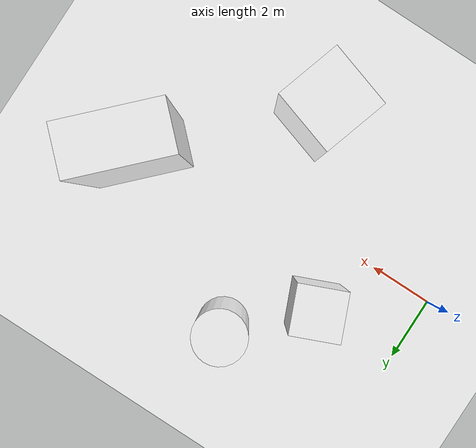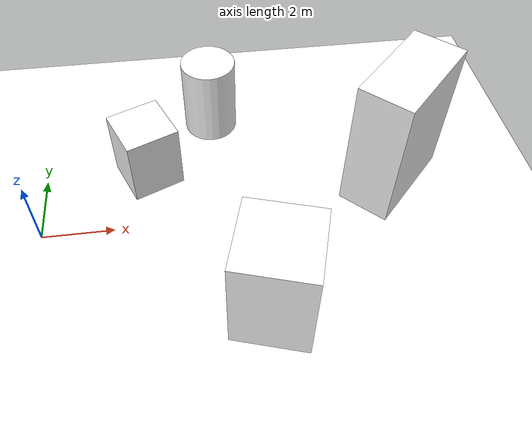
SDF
<sdf version="1.9">
 <world name="textured">
  <physics type="ode">
   <max_step_size>0.004</max_step_size>
   <real_time_factor>1.0</real_time_factor>
   <real_time_update_rate>250</real_time_update_rate>
  </physics>
  <gravity>0 0 -9.8</gravity>
  <magnetic_field>6e-06 2.3e-05 -4.2e-05</magnetic_field>
  <atmosphere type="adiabatic"/>
  <scene>
   <grid>false</grid>
   <ambient>0.6 0.6 0.6 1</ambient>
   <background>0.7 0.7 0.8 1</background>
   <shadows>true</shadows>
  </scene>
  <light name="sunUTC" type="directional">
   <pose>0 0 500 0 -0 0</pose>
   <intensity>1.2</intensity>
   <direction>0.1 0.5 -0.8</direction>
   <diffuse>0.95 0.95 0.95 1</diffuse>
   <specular>0.3 0.3 0.3 1</specular>
   <attenuation><range>2000</range><linear>0</linear><constant>1</constant><quadratic>0</quadratic></attenuation>
  </light>
  <model name="ground_plane">
   <static>true</static>
   <link name="link">
    <collision name="collision">
     <geometry><plane><normal>0 0 1</normal><size>500 500</size></plane></geometry>
    </collision>
    <visual name="visual">
     <geometry><plane><normal>0 0 1</normal><size>500 500</size></plane></geometry>
     <material>
      <ambient>0.8 0.8 0.8 1</ambient>
      <diffuse>1.0 1.0 1.0 1</diffuse>
      <specular>0.2 0.2 0.2 1</specular>
      <pbr><metal><albedo_map>../configs/textures/ground_texture.png</albedo_map></metal></pbr>
     </material>
    </visual>
   </link>
  </model>
  <model name="textured_box1">
   <static>true</static>
   <pose>3 2 1 0 0 0.4</pose>
   <link name="link">
    <collision name="collision"><geometry><box><size>1.5 1.5 2.0</size></box></geometry></collision>
    <visual name="visual">
     <geometry><box><size>1.5 1.5 2.0</size></box></geometry>
     <material>
      <ambient>0.8 0.8 0.8 1</ambient>
      <diffuse>1.0 1.0 1.0 1</diffuse>
      <pbr><metal><albedo_map>../configs/textures/box_texture.png</albedo_map></metal></pbr>
     </material>
    </visual>
   </link>
  </model>
  <model name="textured_box2">
   <static>true</static>
   <pose>6 -3 1.5 0 0 -0.3</pose>
   <link name="link">
    <collision name="collision"><geometry><box><size>2.0 2.0 3.0</size></box></geometry></collision>
    <visual name="visual">
     <geometry><box><size>2.0 2.0 3.0</size></box></geometry>
     <material>
      <ambient>0.8 0.8 0.8 1</ambient>
      <diffuse>1.0 1.0 1.0 1</diffuse>
      <pbr><metal><albedo_map>../configs/textures/box_texture.png</albedo_map></metal></pbr>
     </material>
    </visual>
   </link>
  </model>
  <model name="textured_box3">
   <static>true</static>
   <pose>10 1 2.0 0 0 0.8</pose>
   <link name="link">
    <collision name="collision"><geometry><box><size>3.0 1.5 4.0</size></box></geometry></collision>
    <visual name="visual">
     <geometry><box><size>3.0 1.5 4.0</size></box></geometry>
     <material>
      <ambient>0.8 0.8 0.8 1</ambient>
      <diffuse>1.0 1.0 1.0 1</diffuse>
      <pbr><metal><albedo_map>../configs/textures/box_texture.png</albedo_map></metal></pbr>
     </material>
    </visual>
   </link>
  </model>
  <model name="textured_cylinder">
   <static>true</static>
   <pose>5 4 1.2 0 0 0</pose>
   <link name="link">
    <collision name="collision">
     <geometry><cylinder><radius>0.8</radius><length>2.4</length></cylinder></geometry>
    </collision>
    <visual name="visual">
     <geometry><cylinder><radius>0.8</radius><length>2.4</length></cylinder></geometry>
     <material>
      <ambient>0.8 0.8 0.8 1</ambient>
      <diffuse>1.0 1.0 1.0 1</diffuse>
      <pbr><metal><albedo_map>../configs/textures/box_texture.png</albedo_map></metal></pbr>
     </material>
    </visual>
   </link>
  </model>
  <spherical_coordinates>
   <surface_model>EARTH_WGS84</surface_model>
   <world_frame_orientation>ENU</world_frame_orientation>
   <latitude_deg>47.397971057728974</latitude_deg>
   <longitude_deg>8.546163739800146</longitude_deg>
   <elevation>0</elevation>
  </spherical_coordinates>
 </world>
</sdf>
